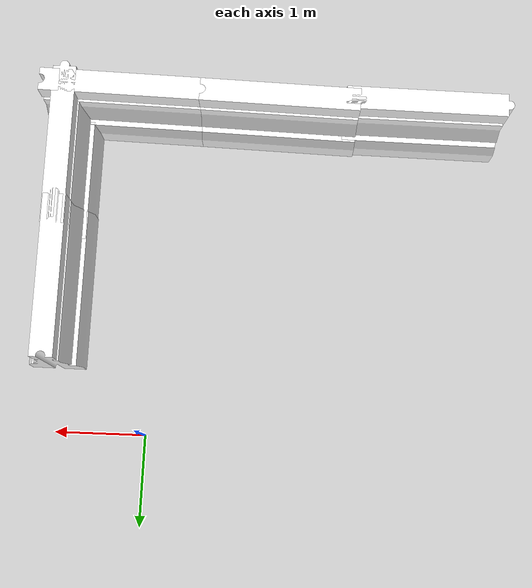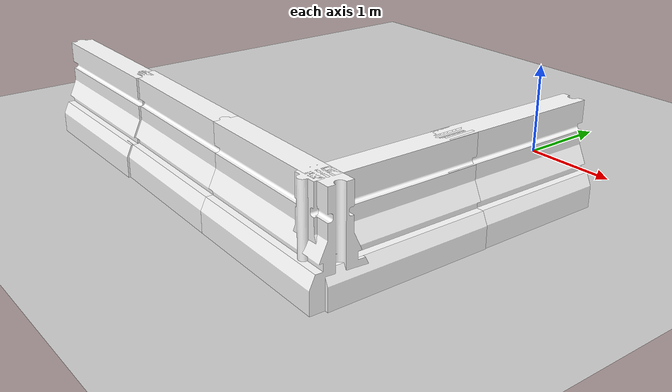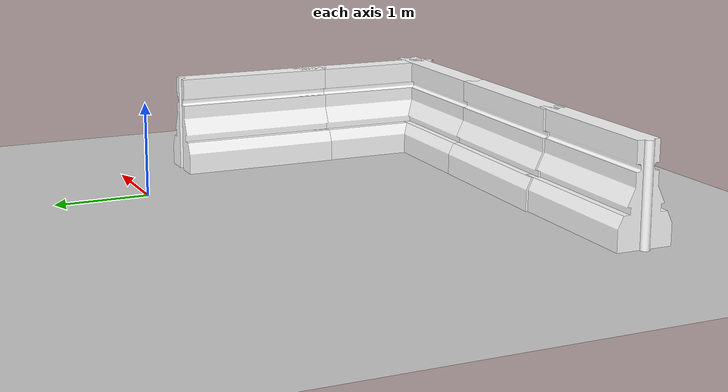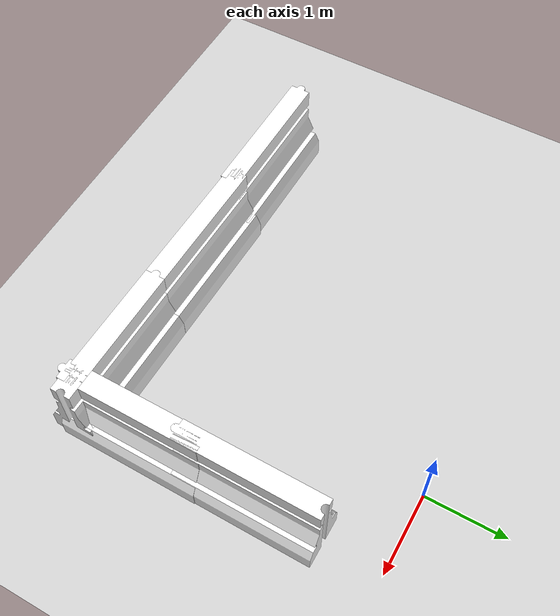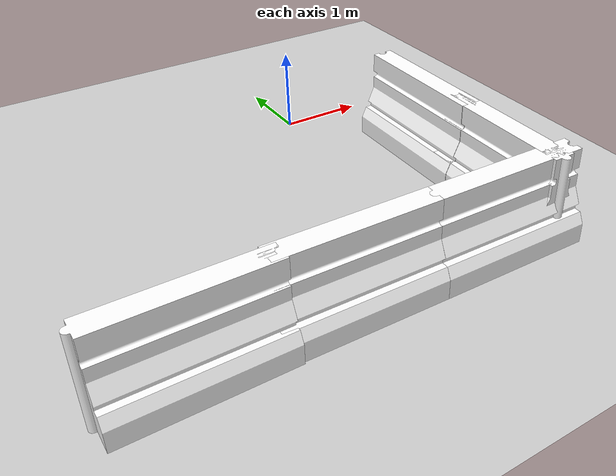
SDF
<sdf version="1.4">
 <world name="default">
  <model name="ground_plane">
   <static>1</static>
   <link name="link">
    <collision name="collision">
     <geometry><plane><normal>0 0 1</normal><size>100 100</size></plane></geometry>
     <surface><friction><ode><mu>100</mu><mu2>50</mu2></ode></friction></surface>
    </collision>
    <visual name="visual">
     <cast_shadows>0</cast_shadows>
     <geometry><plane><normal>0 0 1</normal><size>100 100</size></plane></geometry>
     <material>
      <script><uri>file://media/materials/scripts/gazebo.material</uri><name>Gazebo/Grey</name></script>
     </material>
    </visual>
    <velocity_decay><linear>0</linear><angular>0</angular></velocity_decay>
   </link>
  </model>
  <model name="drc_practice_white_jersey_barrier_1">
   <static>1</static>
   <link name="link">
    <visual name="visual">
     <geometry>
      <mesh><uri>model://drc_practice_white_jersey_barrier/meshes/jersey_barrier.dae</uri></mesh>
     </geometry>
    </visual>
    <collision name="collision">
     <geometry>
      <mesh><uri>model://drc_practice_white_jersey_barrier/meshes/jersey_barrier.dae</uri></mesh>
     </geometry>
    </collision>
    <velocity_decay><linear>0</linear><angular>0</angular></velocity_decay>
   </link>
   <pose>1 -1.57769 0 0 -0 0</pose>
  </model>
  <model name="drc_practice_white_jersey_barrier_2">
   <static>1</static>
   <link name="link">
    <visual name="visual">
     <geometry>
      <mesh><uri>model://drc_practice_white_jersey_barrier/meshes/jersey_barrier.dae</uri></mesh>
     </geometry>
    </visual>
    <collision name="collision">
     <geometry>
      <mesh><uri>model://drc_practice_white_jersey_barrier/meshes/jersey_barrier.dae</uri></mesh>
     </geometry>
    </collision>
    <velocity_decay><linear>0</linear><angular>0</angular></velocity_decay>
   </link>
   <pose>0.395732 -3.69659 0 0 0 -1.5911</pose>
  </model>
  <model name="drc_practice_white_jersey_barrier_5">
   <static>1</static>
   <link name="link">
    <visual name="visual">
     <geometry>
      <mesh><uri>model://drc_practice_white_jersey_barrier/meshes/jersey_barrier.dae</uri></mesh>
     </geometry>
    </visual>
    <collision name="collision">
     <geometry>
      <mesh><uri>model://drc_practice_white_jersey_barrier/meshes/jersey_barrier.dae</uri></mesh>
     </geometry>
    </collision>
    <velocity_decay><linear>0</linear><angular>0</angular></velocity_decay>
   </link>
   <pose>-1.34049 -3.65038 0 0 0 -1.59368</pose>
  </model>
  <model name="drc_practice_white_jersey_barrier_6">
   <static>1</static>
   <link name="link">
    <visual name="visual">
     <geometry>
      <mesh><uri>model://drc_practice_white_jersey_barrier/meshes/jersey_barrier.dae</uri></mesh>
     </geometry>
    </visual>
    <collision name="collision">
     <geometry>
      <mesh><uri>model://drc_practice_white_jersey_barrier/meshes/jersey_barrier.dae</uri></mesh>
     </geometry>
    </collision>
    <velocity_decay><linear>0</linear><angular>0</angular></velocity_decay>
   </link>
   <pose>-2.92621 -3.63966 0 0 0 -1.57926</pose>
  </model>
  <model name="drc_practice_white_jersey_barrier_12">
   <static>1</static>
   <link name="link">
    <visual name="visual">
     <geometry>
      <mesh><uri>model://drc_practice_white_jersey_barrier/meshes/jersey_barrier.dae</uri></mesh>
     </geometry>
    </visual>
    <collision name="collision">
     <geometry>
      <mesh><uri>model://drc_practice_white_jersey_barrier/meshes/jersey_barrier.dae</uri></mesh>
     </geometry>
    </collision>
    <velocity_decay><linear>0</linear><angular>0</angular></velocity_decay>
   </link>
   <pose>1 -3 0 0 -0 0</pose>
  </model>
 </world>
</sdf>
